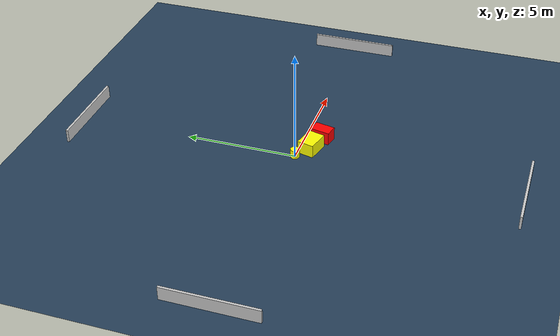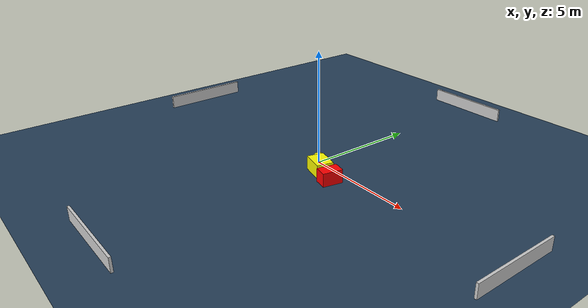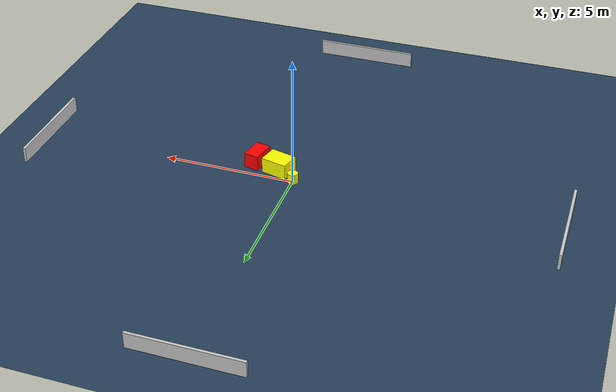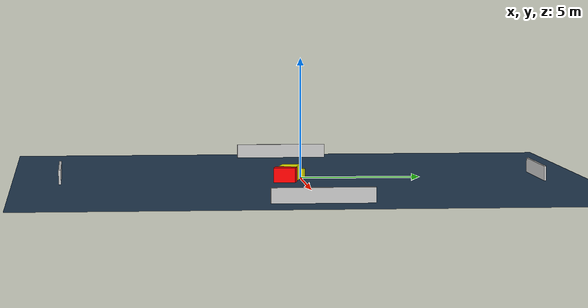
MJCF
<?xml version="1.0" ?>
<mujoco model="generated_environment">
  <option timestep="0.01" integrator="RK4" cone="elliptic"/>
  <default>
    <geom density="1"/>
  </default>
  <asset>
    <texture builtin="gradient" height="3072" name="skybox" rgb1="0.3 0.5 0.7" rgb2="0 0 0" type="skybox" width="512"/>
    <texture builtin="checker" height="300" name="groundplane" rgb1="0.2 0.3 0.4" rgb2="0.1 0.2 0.3" type="2d" width="300"/>
    <material name="groundplane" reflectance="0.2" texrepeat="5 5" texture="groundplane"/>
  </asset>
  <worldbody>
    <light dir="0 0 -1" directional="true" pos="0 0 1.5"/>
    <geom condim="3" friction="0.5 0.005 0.001" material="groundplane" name="floor" pos="0 0 0" size="0 0 0.05" type="plane"/>
    <body name="walls">
      <geom name="wall_1" condim="4" pos="-10.0 0.0 0.3" rgba="0.800000011920929 0.800000011920929 0.800000011920929 1.0" size="0.05 2.0 0.3" type="box"/>
      <geom name="wall_2" condim="4" pos="10.0 0.0 0.3" rgba="0.800000011920929 0.800000011920929 0.800000011920929 1.0" size="0.05 2.0 0.3" type="box"/>
      <geom name="wall_3" condim="4" pos="0.0 -10.0 0.3" rgba="0.800000011920929 0.800000011920929 0.800000011920929 1.0" size="2.0 0.05 0.3" type="box"/>
      <geom name="wall_4" condim="4" pos="0.0 10.0 0.3" rgba="0.800000011920929 0.800000011920929 0.800000011920929 1.0" size="2.0 0.05 0.3" type="box"/>
    </body>
    <body name="robot">
      <joint name="joint_x" type="slide" pos="0 0 0" axis="1 0 0"/>
      <joint name="joint_y" type="slide" pos="0 0 0" axis="0 1 0"/>
      <geom name="robot" type="cylinder" pos="0.0 0.0 0.2" size="0.2 0.2 0.0" mass="5.0" friction="1.0 0.005 0.0001" condim="4" rgba="1.0 1.0 0.0 1.0"/>
    </body>
    <body name="obstacle_1_movable">
      <geom name="obstacle_1_movable" condim="4" pos="0.723589375029059 -0.5113078068481539 0.3" euler="0 0 346.0623642846138" friction="0.0 0.005 0.001" rgba="1.0 1.0 0.0 1.0" size="0.5038794995075637 0.375000696261809 0.3" type="box" mass="0.1"/>
      <joint type="free"/>
    </body>
    <body name="obstacle_2_static">
      <geom name="obstacle_2_static" condim="4" pos="1.6626551821527362 -0.760322637074401 0.3" euler="0 0 78.07937986832856" friction="0.0 0.005 0.001" rgba="1.0 0.0 0.0 1.0" size="0.4462540194522427 0.28443610231294036 0.3" type="box"/>
    </body>
  </worldbody>
  <actuator>
    <motor name="actuator_x" joint="joint_x" gear="1" ctrlrange="-1 1"/>
    <motor name="actuator_y" joint="joint_y" gear="1" ctrlrange="-1 1"/>
  </actuator>
</mujoco>
